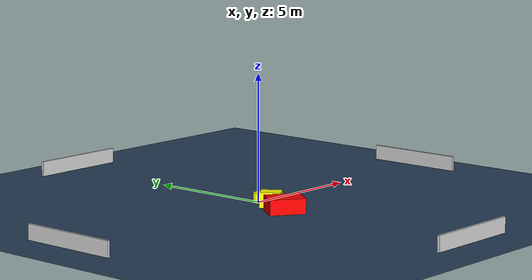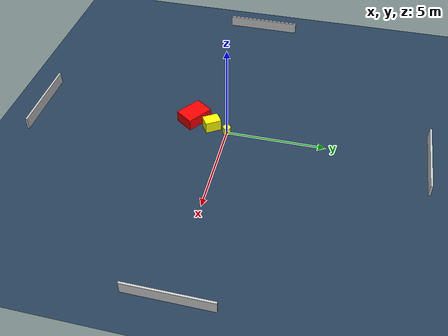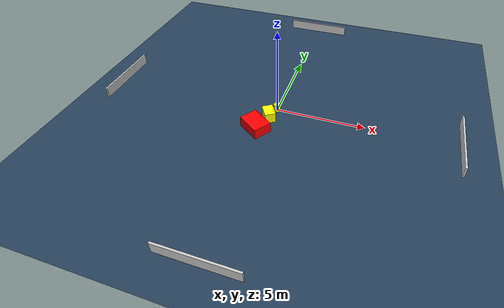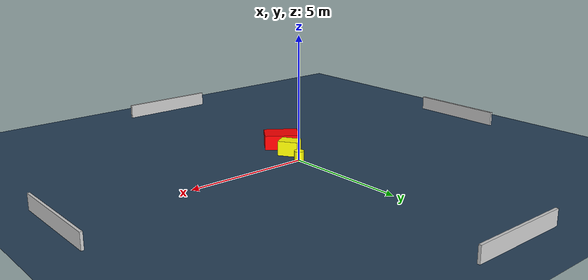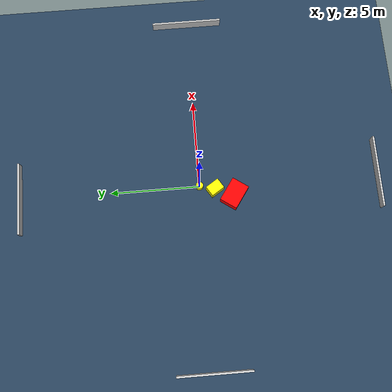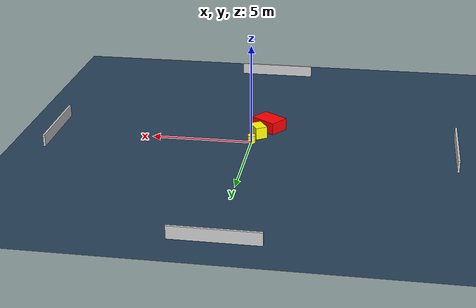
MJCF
<?xml version="1.0" ?>
<mujoco model="generated_environment">
  <option timestep="0.01" integrator="RK4" cone="elliptic"/>
  <default>
    <geom density="1"/>
  </default>
  <asset>
    <texture builtin="gradient" height="3072" name="skybox" rgb1="0.3 0.5 0.7" rgb2="0 0 0" type="skybox" width="512"/>
    <texture builtin="checker" height="300" name="groundplane" rgb1="0.2 0.3 0.4" rgb2="0.1 0.2 0.3" type="2d" width="300"/>
    <material name="groundplane" reflectance="0.2" texrepeat="5 5" texture="groundplane"/>
  </asset>
  <worldbody>
    <light dir="0 0 -1" directional="true" pos="0 0 1.5"/>
    <geom condim="3" friction="0.5 0.005 0.001" material="groundplane" name="floor" pos="0 0 0" size="0 0 0.05" type="plane"/>
    <body name="walls">
      <geom name="wall_1" condim="4" pos="-10.0 0.0 0.3" rgba="0.800000011920929 0.800000011920929 0.800000011920929 1.0" size="0.05 2.0 0.3" type="box"/>
      <geom name="wall_2" condim="4" pos="10.0 0.0 0.3" rgba="0.800000011920929 0.800000011920929 0.800000011920929 1.0" size="0.05 2.0 0.3" type="box"/>
      <geom name="wall_3" condim="4" pos="0.0 -10.0 0.3" rgba="0.800000011920929 0.800000011920929 0.800000011920929 1.0" size="2.0 0.05 0.3" type="box"/>
      <geom name="wall_4" condim="4" pos="0.0 10.0 0.3" rgba="0.800000011920929 0.800000011920929 0.800000011920929 1.0" size="2.0 0.05 0.3" type="box"/>
    </body>
    <body name="robot">
      <joint name="joint_x" type="slide" pos="0 0 0" axis="1 0 0"/>
      <joint name="joint_y" type="slide" pos="0 0 0" axis="0 1 0"/>
      <geom name="robot" type="cylinder" pos="0.0 0.0 0.2" size="0.2 0.2 0.0" mass="5.0" friction="1.0 0.005 0.0001" condim="4" rgba="1.0 1.0 0.0 1.0"/>
    </body>
    <body name="obstacle_1_movable">
      <geom name="obstacle_1_movable" condim="4" pos="-0.21910416486145112 -0.8423906168630289 0.3" euler="0 0 32.6368513045129" friction="0.0 0.005 0.001" rgba="1.0 1.0 0.0 1.0" size="0.3034395217742014 0.40509475659966043 0.3" type="box" mass="0.1"/>
      <joint type="free"/>
    </body>
    <body name="obstacle_2_static">
      <geom name="obstacle_2_static" condim="4" pos="-0.6320627192115643 -1.8843698339402941 0.3" euler="0 0 55.120366923433025" friction="0.0 0.005 0.001" rgba="1.0 0.0 0.0 1.0" size="0.5068930803854235 0.7022997409408618 0.3" type="box"/>
    </body>
  </worldbody>
  <actuator>
    <motor name="actuator_x" joint="joint_x" gear="1" ctrlrange="-1 1"/>
    <motor name="actuator_y" joint="joint_y" gear="1" ctrlrange="-1 1"/>
  </actuator>
</mujoco>
